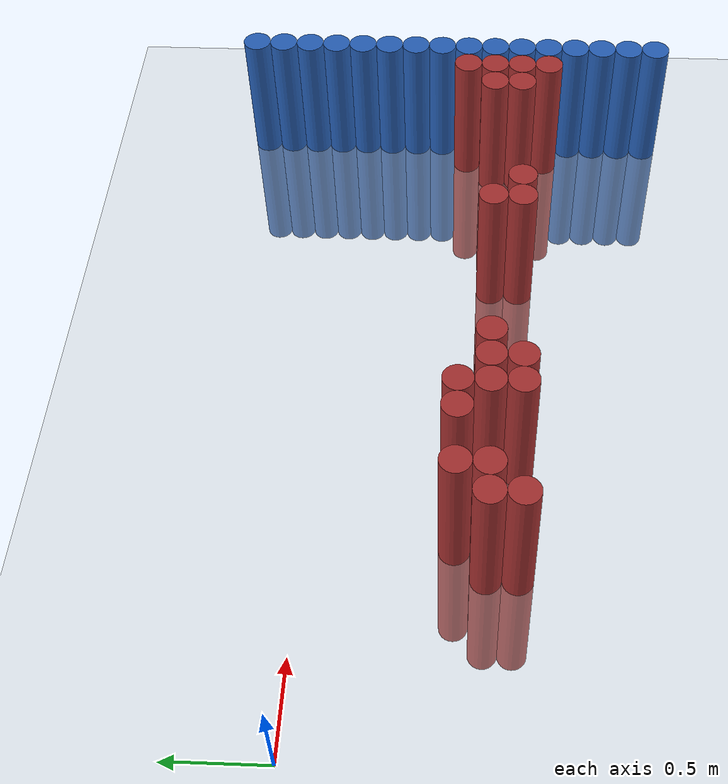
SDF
<sdf version="1.6">
 <world name="default">
  <model name="ground_plane">
   <static>1</static>
   <link name="link">
    <collision name="collision">
     <geometry><plane><normal>0 0 1</normal><size>100 100</size></plane></geometry>
     <surface><friction><ode><mu>100</mu><mu2>50</mu2></ode></friction></surface>
    </collision>
    <visual name="visual">
     <cast_shadows>0</cast_shadows>
     <geometry><plane><normal>0 0 1</normal><size>100 100</size></plane></geometry>
     <material>
      <script><uri>file://media/materials/scripts/gazebo.material</uri><name>Gazebo/Grey</name></script>
     </material>
    </visual>
   </link>
  </model>
  <model name="unit_cylinder_92">
   <static>1</static>
   <pose>3.925000 -1.625000 0.000000 0.000000 0.000000 0.000000</pose>
   <link name="link">
    <inertial>
     <mass>1</mass>
     <inertia><ixx>0.145833</ixx><ixy>0</ixy><ixz>0</ixz><iyy>0.145833</iyy><iyz>0</iyz><izz>0.125</izz></inertia>
    </inertial>
    <collision name="collision">
     <geometry><cylinder><radius>0.075000</radius><length>1.5</length></cylinder></geometry>
    </collision>
    <visual name="visual">
     <geometry><cylinder><radius>0.075000</radius><length>1.5</length></cylinder></geometry>
     <material>
      <ambient>0.152000 0.379000 0.720000 1</ambient>
      <diffuse>0.152000 0.379000 0.720000 1</diffuse>
     </material>
     <material>
      <script><name>Gazebo/Grey</name><uri>file://media/materials/scripts/gazebo.material</uri></script>
     </material>
    </visual>
   </link>
  </model>
  <model name="unit_cylinder_94">
   <static>1</static>
   <pose>3.925000 -1.475000 0.000000 0.000000 0.000000 0.000000</pose>
   <link name="link">
    <inertial>
     <mass>1</mass>
     <inertia><ixx>0.145833</ixx><ixy>0</ixy><ixz>0</ixz><iyy>0.145833</iyy><iyz>0</iyz><izz>0.125</izz></inertia>
    </inertial>
    <collision name="collision">
     <geometry><cylinder><radius>0.075000</radius><length>1.5</length></cylinder></geometry>
    </collision>
    <visual name="visual">
     <geometry><cylinder><radius>0.075000</radius><length>1.5</length></cylinder></geometry>
     <material>
      <ambient>0.152000 0.379000 0.720000 1</ambient>
      <diffuse>0.152000 0.379000 0.720000 1</diffuse>
     </material>
     <material>
      <script><name>Gazebo/Grey</name><uri>file://media/materials/scripts/gazebo.material</uri></script>
     </material>
    </visual>
   </link>
  </model>
  <model name="unit_cylinder_96">
   <static>1</static>
   <pose>3.925000 -1.325000 0.000000 0.000000 0.000000 0.000000</pose>
   <link name="link">
    <inertial>
     <mass>1</mass>
     <inertia><ixx>0.145833</ixx><ixy>0</ixy><ixz>0</ixz><iyy>0.145833</iyy><iyz>0</iyz><izz>0.125</izz></inertia>
    </inertial>
    <collision name="collision">
     <geometry><cylinder><radius>0.075000</radius><length>1.5</length></cylinder></geometry>
    </collision>
    <visual name="visual">
     <geometry><cylinder><radius>0.075000</radius><length>1.5</length></cylinder></geometry>
     <material>
      <ambient>0.152000 0.379000 0.720000 1</ambient>
      <diffuse>0.152000 0.379000 0.720000 1</diffuse>
     </material>
     <material>
      <script><name>Gazebo/Grey</name><uri>file://media/materials/scripts/gazebo.material</uri></script>
     </material>
    </visual>
   </link>
  </model>
  <model name="unit_cylinder_98">
   <static>1</static>
   <pose>3.925000 -1.175000 0.000000 0.000000 0.000000 0.000000</pose>
   <link name="link">
    <inertial>
     <mass>1</mass>
     <inertia><ixx>0.145833</ixx><ixy>0</ixy><ixz>0</ixz><iyy>0.145833</iyy><iyz>0</iyz><izz>0.125</izz></inertia>
    </inertial>
    <collision name="collision">
     <geometry><cylinder><radius>0.075000</radius><length>1.5</length></cylinder></geometry>
    </collision>
    <visual name="visual">
     <geometry><cylinder><radius>0.075000</radius><length>1.5</length></cylinder></geometry>
     <material>
      <ambient>0.152000 0.379000 0.720000 1</ambient>
      <diffuse>0.152000 0.379000 0.720000 1</diffuse>
     </material>
     <material>
      <script><name>Gazebo/Grey</name><uri>file://media/materials/scripts/gazebo.material</uri></script>
     </material>
    </visual>
   </link>
  </model>
  <model name="unit_cylinder_100">
   <static>1</static>
   <pose>3.925000 -1.025000 0.000000 0.000000 0.000000 0.000000</pose>
   <link name="link">
    <inertial>
     <mass>1</mass>
     <inertia><ixx>0.145833</ixx><ixy>0</ixy><ixz>0</ixz><iyy>0.145833</iyy><iyz>0</iyz><izz>0.125</izz></inertia>
    </inertial>
    <collision name="collision">
     <geometry><cylinder><radius>0.075000</radius><length>1.5</length></cylinder></geometry>
    </collision>
    <visual name="visual">
     <geometry><cylinder><radius>0.075000</radius><length>1.5</length></cylinder></geometry>
     <material>
      <ambient>0.152000 0.379000 0.720000 1</ambient>
      <diffuse>0.152000 0.379000 0.720000 1</diffuse>
     </material>
     <material>
      <script><name>Gazebo/Grey</name><uri>file://media/materials/scripts/gazebo.material</uri></script>
     </material>
    </visual>
   </link>
  </model>
  <model name="unit_cylinder_102">
   <static>1</static>
   <pose>3.925000 -0.875000 0.000000 0.000000 0.000000 0.000000</pose>
   <link name="link">
    <inertial>
     <mass>1</mass>
     <inertia><ixx>0.145833</ixx><ixy>0</ixy><ixz>0</ixz><iyy>0.145833</iyy><iyz>0</iyz><izz>0.125</izz></inertia>
    </inertial>
    <collision name="collision">
     <geometry><cylinder><radius>0.075000</radius><length>1.5</length></cylinder></geometry>
    </collision>
    <visual name="visual">
     <geometry><cylinder><radius>0.075000</radius><length>1.5</length></cylinder></geometry>
     <material>
      <ambient>0.152000 0.379000 0.720000 1</ambient>
      <diffuse>0.152000 0.379000 0.720000 1</diffuse>
     </material>
     <material>
      <script><name>Gazebo/Grey</name><uri>file://media/materials/scripts/gazebo.material</uri></script>
     </material>
    </visual>
   </link>
  </model>
  <model name="unit_cylinder_104">
   <static>1</static>
   <pose>3.925000 -0.725000 0.000000 0.000000 0.000000 0.000000</pose>
   <link name="link">
    <inertial>
     <mass>1</mass>
     <inertia><ixx>0.145833</ixx><ixy>0</ixy><ixz>0</ixz><iyy>0.145833</iyy><iyz>0</iyz><izz>0.125</izz></inertia>
    </inertial>
    <collision name="collision">
     <geometry><cylinder><radius>0.075000</radius><length>1.5</length></cylinder></geometry>
    </collision>
    <visual name="visual">
     <geometry><cylinder><radius>0.075000</radius><length>1.5</length></cylinder></geometry>
     <material>
      <ambient>0.152000 0.379000 0.720000 1</ambient>
      <diffuse>0.152000 0.379000 0.720000 1</diffuse>
     </material>
     <material>
      <script><name>Gazebo/Grey</name><uri>file://media/materials/scripts/gazebo.material</uri></script>
     </material>
    </visual>
   </link>
  </model>
  <model name="unit_cylinder_106">
   <static>1</static>
   <pose>3.925000 -0.575000 0.000000 0.000000 0.000000 0.000000</pose>
   <link name="link">
    <inertial>
     <mass>1</mass>
     <inertia><ixx>0.145833</ixx><ixy>0</ixy><ixz>0</ixz><iyy>0.145833</iyy><iyz>0</iyz><izz>0.125</izz></inertia>
    </inertial>
    <collision name="collision">
     <geometry><cylinder><radius>0.075000</radius><length>1.5</length></cylinder></geometry>
    </collision>
    <visual name="visual">
     <geometry><cylinder><radius>0.075000</radius><length>1.5</length></cylinder></geometry>
     <material>
      <ambient>0.152000 0.379000 0.720000 1</ambient>
      <diffuse>0.152000 0.379000 0.720000 1</diffuse>
     </material>
     <material>
      <script><name>Gazebo/Grey</name><uri>file://media/materials/scripts/gazebo.material</uri></script>
     </material>
    </visual>
   </link>
  </model>
  <model name="unit_cylinder_108">
   <static>1</static>
   <pose>3.925000 -0.425000 0.000000 0.000000 0.000000 0.000000</pose>
   <link name="link">
    <inertial>
     <mass>1</mass>
     <inertia><ixx>0.145833</ixx><ixy>0</ixy><ixz>0</ixz><iyy>0.145833</iyy><iyz>0</iyz><izz>0.125</izz></inertia>
    </inertial>
    <collision name="collision">
     <geometry><cylinder><radius>0.075000</radius><length>1.5</length></cylinder></geometry>
    </collision>
    <visual name="visual">
     <geometry><cylinder><radius>0.075000</radius><length>1.5</length></cylinder></geometry>
     <material>
      <ambient>0.152000 0.379000 0.720000 1</ambient>
      <diffuse>0.152000 0.379000 0.720000 1</diffuse>
     </material>
     <material>
      <script><name>Gazebo/Grey</name><uri>file://media/materials/scripts/gazebo.material</uri></script>
     </material>
    </visual>
   </link>
  </model>
  <model name="unit_cylinder_110">
   <static>1</static>
   <pose>3.925000 -0.275000 0.000000 0.000000 0.000000 0.000000</pose>
   <link name="link">
    <inertial>
     <mass>1</mass>
     <inertia><ixx>0.145833</ixx><ixy>0</ixy><ixz>0</ixz><iyy>0.145833</iyy><iyz>0</iyz><izz>0.125</izz></inertia>
    </inertial>
    <collision name="collision">
     <geometry><cylinder><radius>0.075000</radius><length>1.5</length></cylinder></geometry>
    </collision>
    <visual name="visual">
     <geometry><cylinder><radius>0.075000</radius><length>1.5</length></cylinder></geometry>
     <material>
      <ambient>0.152000 0.379000 0.720000 1</ambient>
      <diffuse>0.152000 0.379000 0.720000 1</diffuse>
     </material>
     <material>
      <script><name>Gazebo/Grey</name><uri>file://media/materials/scripts/gazebo.material</uri></script>
     </material>
    </visual>
   </link>
  </model>
  <model name="unit_cylinder_112">
   <static>1</static>
   <pose>3.925000 -0.125000 0.000000 0.000000 0.000000 0.000000</pose>
   <link name="link">
    <inertial>
     <mass>1</mass>
     <inertia><ixx>0.145833</ixx><ixy>0</ixy><ixz>0</ixz><iyy>0.145833</iyy><iyz>0</iyz><izz>0.125</izz></inertia>
    </inertial>
    <collision name="collision">
     <geometry><cylinder><radius>0.075000</radius><length>1.5</length></cylinder></geometry>
    </collision>
    <visual name="visual">
     <geometry><cylinder><radius>0.075000</radius><length>1.5</length></cylinder></geometry>
     <material>
      <ambient>0.152000 0.379000 0.720000 1</ambient>
      <diffuse>0.152000 0.379000 0.720000 1</diffuse>
     </material>
     <material>
      <script><name>Gazebo/Grey</name><uri>file://media/materials/scripts/gazebo.material</uri></script>
     </material>
    </visual>
   </link>
  </model>
  <model name="unit_cylinder_114">
   <static>1</static>
   <pose>3.925000 0.025000 0.000000 0.000000 0.000000 0.000000</pose>
   <link name="link">
    <inertial>
     <mass>1</mass>
     <inertia><ixx>0.145833</ixx><ixy>0</ixy><ixz>0</ixz><iyy>0.145833</iyy><iyz>0</iyz><izz>0.125</izz></inertia>
    </inertial>
    <collision name="collision">
     <geometry><cylinder><radius>0.075000</radius><length>1.5</length></cylinder></geometry>
    </collision>
    <visual name="visual">
     <geometry><cylinder><radius>0.075000</radius><length>1.5</length></cylinder></geometry>
     <material>
      <ambient>0.152000 0.379000 0.720000 1</ambient>
      <diffuse>0.152000 0.379000 0.720000 1</diffuse>
     </material>
     <material>
      <script><name>Gazebo/Grey</name><uri>file://media/materials/scripts/gazebo.material</uri></script>
     </material>
    </visual>
   </link>
  </model>
  <model name="unit_cylinder_116">
   <static>1</static>
   <pose>3.925000 0.175000 0.000000 0.000000 0.000000 0.000000</pose>
   <link name="link">
    <inertial>
     <mass>1</mass>
     <inertia><ixx>0.145833</ixx><ixy>0</ixy><ixz>0</ixz><iyy>0.145833</iyy><iyz>0</iyz><izz>0.125</izz></inertia>
    </inertial>
    <collision name="collision">
     <geometry><cylinder><radius>0.075000</radius><length>1.5</length></cylinder></geometry>
    </collision>
    <visual name="visual">
     <geometry><cylinder><radius>0.075000</radius><length>1.5</length></cylinder></geometry>
     <material>
      <ambient>0.152000 0.379000 0.720000 1</ambient>
      <diffuse>0.152000 0.379000 0.720000 1</diffuse>
     </material>
     <material>
      <script><name>Gazebo/Grey</name><uri>file://media/materials/scripts/gazebo.material</uri></script>
     </material>
    </visual>
   </link>
  </model>
  <model name="unit_cylinder_118">
   <static>1</static>
   <pose>3.925000 0.325000 0.000000 0.000000 0.000000 0.000000</pose>
   <link name="link">
    <inertial>
     <mass>1</mass>
     <inertia><ixx>0.145833</ixx><ixy>0</ixy><ixz>0</ixz><iyy>0.145833</iyy><iyz>0</iyz><izz>0.125</izz></inertia>
    </inertial>
    <collision name="collision">
     <geometry><cylinder><radius>0.075000</radius><length>1.5</length></cylinder></geometry>
    </collision>
    <visual name="visual">
     <geometry><cylinder><radius>0.075000</radius><length>1.5</length></cylinder></geometry>
     <material>
      <ambient>0.152000 0.379000 0.720000 1</ambient>
      <diffuse>0.152000 0.379000 0.720000 1</diffuse>
     </material>
     <material>
      <script><name>Gazebo/Grey</name><uri>file://media/materials/scripts/gazebo.material</uri></script>
     </material>
    </visual>
   </link>
  </model>
  <model name="unit_cylinder_120">
   <static>1</static>
   <pose>3.925000 0.475000 0.000000 0.000000 0.000000 0.000000</pose>
   <link name="link">
    <inertial>
     <mass>1</mass>
     <inertia><ixx>0.145833</ixx><ixy>0</ixy><ixz>0</ixz><iyy>0.145833</iyy><iyz>0</iyz><izz>0.125</izz></inertia>
    </inertial>
    <collision name="collision">
     <geometry><cylinder><radius>0.075000</radius><length>1.5</length></cylinder></geometry>
    </collision>
    <visual name="visual">
     <geometry><cylinder><radius>0.075000</radius><length>1.5</length></cylinder></geometry>
     <material>
      <ambient>0.152000 0.379000 0.720000 1</ambient>
      <diffuse>0.152000 0.379000 0.720000 1</diffuse>
     </material>
     <material>
      <script><name>Gazebo/Grey</name><uri>file://media/materials/scripts/gazebo.material</uri></script>
     </material>
    </visual>
   </link>
  </model>
  <model name="unit_cylinder_343">
   <static>1</static>
   <pose>0.925000 -1.025000 0.000000 0.000000 0.000000 0.000000</pose>
   <link name="link">
    <inertial>
     <mass>1</mass>
     <inertia><ixx>0.145833</ixx><ixy>0</ixy><ixz>0</ixz><iyy>0.145833</iyy><iyz>0</iyz><izz>0.125</izz></inertia>
    </inertial>
    <collision name="collision">
     <geometry><cylinder><radius>0.075000</radius><length>1.5</length></cylinder></geometry>
    </collision>
    <visual name="visual">
     <geometry><cylinder><radius>0.075000</radius><length>1.5</length></cylinder></geometry>
     <material>
      <ambient>0.648000 0.192000 0.192000 1</ambient>
      <diffuse>0.648000 0.192000 0.192000 1</diffuse>
     </material>
     <material>
      <script><name>Gazebo/Grey</name><uri>file://media/materials/scripts/gazebo.material</uri></script>
     </material>
    </visual>
   </link>
  </model>
  <model name="unit_cylinder_344">
   <static>1</static>
   <pose>0.925000 -0.875000 0.000000 0.000000 0.000000 0.000000</pose>
   <link name="link">
    <inertial>
     <mass>1</mass>
     <inertia><ixx>0.145833</ixx><ixy>0</ixy><ixz>0</ixz><iyy>0.145833</iyy><iyz>0</iyz><izz>0.125</izz></inertia>
    </inertial>
    <collision name="collision">
     <geometry><cylinder><radius>0.075000</radius><length>1.5</length></cylinder></geometry>
    </collision>
    <visual name="visual">
     <geometry><cylinder><radius>0.075000</radius><length>1.5</length></cylinder></geometry>
     <material>
      <ambient>0.648000 0.192000 0.192000 1</ambient>
      <diffuse>0.648000 0.192000 0.192000 1</diffuse>
     </material>
     <material>
      <script><name>Gazebo/Grey</name><uri>file://media/materials/scripts/gazebo.material</uri></script>
     </material>
    </visual>
   </link>
  </model>
  <model name="unit_cylinder_347">
   <static>1</static>
   <pose>1.075000 -0.875000 0.000000 0.000000 0.000000 0.000000</pose>
   <link name="link">
    <inertial>
     <mass>1</mass>
     <inertia><ixx>0.145833</ixx><ixy>0</ixy><ixz>0</ixz><iyy>0.145833</iyy><iyz>0</iyz><izz>0.125</izz></inertia>
    </inertial>
    <collision name="collision">
     <geometry><cylinder><radius>0.075000</radius><length>1.5</length></cylinder></geometry>
    </collision>
    <visual name="visual">
     <geometry><cylinder><radius>0.075000</radius><length>1.5</length></cylinder></geometry>
     <material>
      <ambient>0.648000 0.192000 0.192000 1</ambient>
      <diffuse>0.648000 0.192000 0.192000 1</diffuse>
     </material>
     <material>
      <script><name>Gazebo/Grey</name><uri>file://media/materials/scripts/gazebo.material</uri></script>
     </material>
    </visual>
   </link>
  </model>
  <model name="unit_cylinder_348">
   <static>1</static>
   <pose>1.075000 -0.725000 0.000000 0.000000 0.000000 0.000000</pose>
   <link name="link">
    <inertial>
     <mass>1</mass>
     <inertia><ixx>0.145833</ixx><ixy>0</ixy><ixz>0</ixz><iyy>0.145833</iyy><iyz>0</iyz><izz>0.125</izz></inertia>
    </inertial>
    <collision name="collision">
     <geometry><cylinder><radius>0.075000</radius><length>1.5</length></cylinder></geometry>
    </collision>
    <visual name="visual">
     <geometry><cylinder><radius>0.075000</radius><length>1.5</length></cylinder></geometry>
     <material>
      <ambient>0.648000 0.192000 0.192000 1</ambient>
      <diffuse>0.648000 0.192000 0.192000 1</diffuse>
     </material>
     <material>
      <script><name>Gazebo/Grey</name><uri>file://media/materials/scripts/gazebo.material</uri></script>
     </material>
    </visual>
   </link>
  </model>
  <model name="unit_cylinder_353">
   <static>1</static>
   <pose>1.375000 -0.725000 0.000000 0.000000 0.000000 0.000000</pose>
   <link name="link">
    <inertial>
     <mass>1</mass>
     <inertia><ixx>0.145833</ixx><ixy>0</ixy><ixz>0</ixz><iyy>0.145833</iyy><iyz>0</iyz><izz>0.125</izz></inertia>
    </inertial>
    <collision name="collision">
     <geometry><cylinder><radius>0.075000</radius><length>1.5</length></cylinder></geometry>
    </collision>
    <visual name="visual">
     <geometry><cylinder><radius>0.075000</radius><length>1.5</length></cylinder></geometry>
     <material>
      <ambient>0.648000 0.192000 0.192000 1</ambient>
      <diffuse>0.648000 0.192000 0.192000 1</diffuse>
     </material>
     <material>
      <script><name>Gazebo/Grey</name><uri>file://media/materials/scripts/gazebo.material</uri></script>
     </material>
    </visual>
   </link>
  </model>
  <model name="unit_cylinder_354">
   <static>1</static>
   <pose>1.525000 -1.025000 0.000000 0.000000 0.000000 0.000000</pose>
   <link name="link">
    <inertial>
     <mass>1</mass>
     <inertia><ixx>0.145833</ixx><ixy>0</ixy><ixz>0</ixz><iyy>0.145833</iyy><iyz>0</iyz><izz>0.125</izz></inertia>
    </inertial>
    <collision name="collision">
     <geometry><cylinder><radius>0.075000</radius><length>1.5</length></cylinder></geometry>
    </collision>
    <visual name="visual">
     <geometry><cylinder><radius>0.075000</radius><length>1.5</length></cylinder></geometry>
     <material>
      <ambient>0.648000 0.192000 0.192000 1</ambient>
      <diffuse>0.648000 0.192000 0.192000 1</diffuse>
     </material>
     <material>
      <script><name>Gazebo/Grey</name><uri>file://media/materials/scripts/gazebo.material</uri></script>
     </material>
    </visual>
   </link>
  </model>
  <model name="unit_cylinder_355">
   <static>1</static>
   <pose>1.525000 -0.875000 0.000000 0.000000 0.000000 0.000000</pose>
   <link name="link">
    <inertial>
     <mass>1</mass>
     <inertia><ixx>0.145833</ixx><ixy>0</ixy><ixz>0</ixz><iyy>0.145833</iyy><iyz>0</iyz><izz>0.125</izz></inertia>
    </inertial>
    <collision name="collision">
     <geometry><cylinder><radius>0.075000</radius><length>1.5</length></cylinder></geometry>
    </collision>
    <visual name="visual">
     <geometry><cylinder><radius>0.075000</radius><length>1.5</length></cylinder></geometry>
     <material>
      <ambient>0.648000 0.192000 0.192000 1</ambient>
      <diffuse>0.648000 0.192000 0.192000 1</diffuse>
     </material>
     <material>
      <script><name>Gazebo/Grey</name><uri>file://media/materials/scripts/gazebo.material</uri></script>
     </material>
    </visual>
   </link>
  </model>
  <model name="unit_cylinder_356">
   <static>1</static>
   <pose>1.525000 -0.725000 0.000000 0.000000 0.000000 0.000000</pose>
   <link name="link">
    <inertial>
     <mass>1</mass>
     <inertia><ixx>0.145833</ixx><ixy>0</ixy><ixz>0</ixz><iyy>0.145833</iyy><iyz>0</iyz><izz>0.125</izz></inertia>
    </inertial>
    <collision name="collision">
     <geometry><cylinder><radius>0.075000</radius><length>1.5</length></cylinder></geometry>
    </collision>
    <visual name="visual">
     <geometry><cylinder><radius>0.075000</radius><length>1.5</length></cylinder></geometry>
     <material>
      <ambient>0.648000 0.192000 0.192000 1</ambient>
      <diffuse>0.648000 0.192000 0.192000 1</diffuse>
     </material>
     <material>
      <script><name>Gazebo/Grey</name><uri>file://media/materials/scripts/gazebo.material</uri></script>
     </material>
    </visual>
   </link>
  </model>
  <model name="unit_cylinder_357">
   <static>1</static>
   <pose>1.675000 -1.025000 0.000000 0.000000 0.000000 0.000000</pose>
   <link name="link">
    <inertial>
     <mass>1</mass>
     <inertia><ixx>0.145833</ixx><ixy>0</ixy><ixz>0</ixz><iyy>0.145833</iyy><iyz>0</iyz><izz>0.125</izz></inertia>
    </inertial>
    <collision name="collision">
     <geometry><cylinder><radius>0.075000</radius><length>1.5</length></cylinder></geometry>
    </collision>
    <visual name="visual">
     <geometry><cylinder><radius>0.075000</radius><length>1.5</length></cylinder></geometry>
     <material>
      <ambient>0.648000 0.192000 0.192000 1</ambient>
      <diffuse>0.648000 0.192000 0.192000 1</diffuse>
     </material>
     <material>
      <script><name>Gazebo/Grey</name><uri>file://media/materials/scripts/gazebo.material</uri></script>
     </material>
    </visual>
   </link>
  </model>
  <model name="unit_cylinder_358">
   <static>1</static>
   <pose>1.675000 -0.875000 0.000000 0.000000 0.000000 0.000000</pose>
   <link name="link">
    <inertial>
     <mass>1</mass>
     <inertia><ixx>0.145833</ixx><ixy>0</ixy><ixz>0</ixz><iyy>0.145833</iyy><iyz>0</iyz><izz>0.125</izz></inertia>
    </inertial>
    <collision name="collision">
     <geometry><cylinder><radius>0.075000</radius><length>1.5</length></cylinder></geometry>
    </collision>
    <visual name="visual">
     <geometry><cylinder><radius>0.075000</radius><length>1.5</length></cylinder></geometry>
     <material>
      <ambient>0.648000 0.192000 0.192000 1</ambient>
      <diffuse>0.648000 0.192000 0.192000 1</diffuse>
     </material>
     <material>
      <script><name>Gazebo/Grey</name><uri>file://media/materials/scripts/gazebo.material</uri></script>
     </material>
    </visual>
   </link>
  </model>
  <model name="unit_cylinder_360">
   <static>1</static>
   <pose>1.825000 -0.875000 0.000000 0.000000 0.000000 0.000000</pose>
   <link name="link">
    <inertial>
     <mass>1</mass>
     <inertia><ixx>0.145833</ixx><ixy>0</ixy><ixz>0</ixz><iyy>0.145833</iyy><iyz>0</iyz><izz>0.125</izz></inertia>
    </inertial>
    <collision name="collision">
     <geometry><cylinder><radius>0.075000</radius><length>1.5</length></cylinder></geometry>
    </collision>
    <visual name="visual">
     <geometry><cylinder><radius>0.075000</radius><length>1.5</length></cylinder></geometry>
     <material>
      <ambient>0.648000 0.192000 0.192000 1</ambient>
      <diffuse>0.648000 0.192000 0.192000 1</diffuse>
     </material>
     <material>
      <script><name>Gazebo/Grey</name><uri>file://media/materials/scripts/gazebo.material</uri></script>
     </material>
    </visual>
   </link>
  </model>
  <model name="unit_cylinder_372">
   <static>1</static>
   <pose>2.725000 -1.025000 0.000000 0.000000 0.000000 0.000000</pose>
   <link name="link">
    <inertial>
     <mass>1</mass>
     <inertia><ixx>0.145833</ixx><ixy>0</ixy><ixz>0</ixz><iyy>0.145833</iyy><iyz>0</iyz><izz>0.125</izz></inertia>
    </inertial>
    <collision name="collision">
     <geometry><cylinder><radius>0.075000</radius><length>1.5</length></cylinder></geometry>
    </collision>
    <visual name="visual">
     <geometry><cylinder><radius>0.075000</radius><length>1.5</length></cylinder></geometry>
     <material>
      <ambient>0.648000 0.192000 0.192000 1</ambient>
      <diffuse>0.648000 0.192000 0.192000 1</diffuse>
     </material>
     <material>
      <script><name>Gazebo/Grey</name><uri>file://media/materials/scripts/gazebo.material</uri></script>
     </material>
    </visual>
   </link>
  </model>
  <model name="unit_cylinder_373">
   <static>1</static>
   <pose>2.725000 -0.875000 0.000000 0.000000 0.000000 0.000000</pose>
   <link name="link">
    <inertial>
     <mass>1</mass>
     <inertia><ixx>0.145833</ixx><ixy>0</ixy><ixz>0</ixz><iyy>0.145833</iyy><iyz>0</iyz><izz>0.125</izz></inertia>
    </inertial>
    <collision name="collision">
     <geometry><cylinder><radius>0.075000</radius><length>1.5</length></cylinder></geometry>
    </collision>
    <visual name="visual">
     <geometry><cylinder><radius>0.075000</radius><length>1.5</length></cylinder></geometry>
     <material>
      <ambient>0.648000 0.192000 0.192000 1</ambient>
      <diffuse>0.648000 0.192000 0.192000 1</diffuse>
     </material>
     <material>
      <script><name>Gazebo/Grey</name><uri>file://media/materials/scripts/gazebo.material</uri></script>
     </material>
    </visual>
   </link>
  </model>
  <model name="unit_cylinder_375">
   <static>1</static>
   <pose>2.875000 -1.025000 0.000000 0.000000 0.000000 0.000000</pose>
   <link name="link">
    <inertial>
     <mass>1</mass>
     <inertia><ixx>0.145833</ixx><ixy>0</ixy><ixz>0</ixz><iyy>0.145833</iyy><iyz>0</iyz><izz>0.125</izz></inertia>
    </inertial>
    <collision name="collision">
     <geometry><cylinder><radius>0.075000</radius><length>1.5</length></cylinder></geometry>
    </collision>
    <visual name="visual">
     <geometry><cylinder><radius>0.075000</radius><length>1.5</length></cylinder></geometry>
     <material>
      <ambient>0.648000 0.192000 0.192000 1</ambient>
      <diffuse>0.648000 0.192000 0.192000 1</diffuse>
     </material>
     <material>
      <script><name>Gazebo/Grey</name><uri>file://media/materials/scripts/gazebo.material</uri></script>
     </material>
    </visual>
   </link>
  </model>
  <model name="unit_cylinder_382">
   <static>1</static>
   <pose>3.625000 -1.025000 0.000000 0.000000 0.000000 0.000000</pose>
   <link name="link">
    <inertial>
     <mass>1</mass>
     <inertia><ixx>0.145833</ixx><ixy>0</ixy><ixz>0</ixz><iyy>0.145833</iyy><iyz>0</iyz><izz>0.125</izz></inertia>
    </inertial>
    <collision name="collision">
     <geometry><cylinder><radius>0.075000</radius><length>1.5</length></cylinder></geometry>
    </collision>
    <visual name="visual">
     <geometry><cylinder><radius>0.075000</radius><length>1.5</length></cylinder></geometry>
     <material>
      <ambient>0.648000 0.192000 0.192000 1</ambient>
      <diffuse>0.648000 0.192000 0.192000 1</diffuse>
     </material>
     <material>
      <script><name>Gazebo/Grey</name><uri>file://media/materials/scripts/gazebo.material</uri></script>
     </material>
    </visual>
   </link>
  </model>
  <model name="unit_cylinder_383">
   <static>1</static>
   <pose>3.625000 -0.875000 0.000000 0.000000 0.000000 0.000000</pose>
   <link name="link">
    <inertial>
     <mass>1</mass>
     <inertia><ixx>0.145833</ixx><ixy>0</ixy><ixz>0</ixz><iyy>0.145833</iyy><iyz>0</iyz><izz>0.125</izz></inertia>
    </inertial>
    <collision name="collision">
     <geometry><cylinder><radius>0.075000</radius><length>1.5</length></cylinder></geometry>
    </collision>
    <visual name="visual">
     <geometry><cylinder><radius>0.075000</radius><length>1.5</length></cylinder></geometry>
     <material>
      <ambient>0.648000 0.192000 0.192000 1</ambient>
      <diffuse>0.648000 0.192000 0.192000 1</diffuse>
     </material>
     <material>
      <script><name>Gazebo/Grey</name><uri>file://media/materials/scripts/gazebo.material</uri></script>
     </material>
    </visual>
   </link>
  </model>
  <model name="unit_cylinder_387">
   <static>1</static>
   <pose>3.775000 -1.175000 0.000000 0.000000 0.000000 0.000000</pose>
   <link name="link">
    <inertial>
     <mass>1</mass>
     <inertia><ixx>0.145833</ixx><ixy>0</ixy><ixz>0</ixz><iyy>0.145833</iyy><iyz>0</iyz><izz>0.125</izz></inertia>
    </inertial>
    <collision name="collision">
     <geometry><cylinder><radius>0.075000</radius><length>1.5</length></cylinder></geometry>
    </collision>
    <visual name="visual">
     <geometry><cylinder><radius>0.075000</radius><length>1.5</length></cylinder></geometry>
     <material>
      <ambient>0.648000 0.192000 0.192000 1</ambient>
      <diffuse>0.648000 0.192000 0.192000 1</diffuse>
     </material>
     <material>
      <script><name>Gazebo/Grey</name><uri>file://media/materials/scripts/gazebo.material</uri></script>
     </material>
    </visual>
   </link>
  </model>
  <model name="unit_cylinder_388">
   <static>1</static>
   <pose>3.775000 -1.025000 0.000000 0.000000 0.000000 0.000000</pose>
   <link name="link">
    <inertial>
     <mass>1</mass>
     <inertia><ixx>0.145833</ixx><ixy>0</ixy><ixz>0</ixz><iyy>0.145833</iyy><iyz>0</iyz><izz>0.125</izz></inertia>
    </inertial>
    <collision name="collision">
     <geometry><cylinder><radius>0.075000</radius><length>1.5</length></cylinder></geometry>
    </collision>
    <visual name="visual">
     <geometry><cylinder><radius>0.075000</radius><length>1.5</length></cylinder></geometry>
     <material>
      <ambient>0.648000 0.192000 0.192000 1</ambient>
      <diffuse>0.648000 0.192000 0.192000 1</diffuse>
     </material>
     <material>
      <script><name>Gazebo/Grey</name><uri>file://media/materials/scripts/gazebo.material</uri></script>
     </material>
    </visual>
   </link>
  </model>
  <model name="unit_cylinder_389">
   <static>1</static>
   <pose>3.775000 -0.875000 0.000000 0.000000 0.000000 0.000000</pose>
   <link name="link">
    <inertial>
     <mass>1</mass>
     <inertia><ixx>0.145833</ixx><ixy>0</ixy><ixz>0</ixz><iyy>0.145833</iyy><iyz>0</iyz><izz>0.125</izz></inertia>
    </inertial>
    <collision name="collision">
     <geometry><cylinder><radius>0.075000</radius><length>1.5</length></cylinder></geometry>
    </collision>
    <visual name="visual">
     <geometry><cylinder><radius>0.075000</radius><length>1.5</length></cylinder></geometry>
     <material>
      <ambient>0.648000 0.192000 0.192000 1</ambient>
      <diffuse>0.648000 0.192000 0.192000 1</diffuse>
     </material>
     <material>
      <script><name>Gazebo/Grey</name><uri>file://media/materials/scripts/gazebo.material</uri></script>
     </material>
    </visual>
   </link>
  </model>
  <model name="unit_cylinder_390">
   <static>1</static>
   <pose>3.775000 -0.725000 0.000000 0.000000 0.000000 0.000000</pose>
   <link name="link">
    <inertial>
     <mass>1</mass>
     <inertia><ixx>0.145833</ixx><ixy>0</ixy><ixz>0</ixz><iyy>0.145833</iyy><iyz>0</iyz><izz>0.125</izz></inertia>
    </inertial>
    <collision name="collision">
     <geometry><cylinder><radius>0.075000</radius><length>1.5</length></cylinder></geometry>
    </collision>
    <visual name="visual">
     <geometry><cylinder><radius>0.075000</radius><length>1.5</length></cylinder></geometry>
     <material>
      <ambient>0.648000 0.192000 0.192000 1</ambient>
      <diffuse>0.648000 0.192000 0.192000 1</diffuse>
     </material>
     <material>
      <script><name>Gazebo/Grey</name><uri>file://media/materials/scripts/gazebo.material</uri></script>
     </material>
    </visual>
   </link>
  </model>
  <model name="unit_cylinder_401">
   <static>1</static>
   <pose>3.925000 -1.775000 0.000000 0.000000 0.000000 0.000000</pose>
   <link name="link">
    <inertial>
     <mass>1</mass>
     <inertia><ixx>0.145833</ixx><ixy>0</ixy><ixz>0</ixz><iyy>0.145833</iyy><iyz>0</iyz><izz>0.125</izz></inertia>
    </inertial>
    <collision name="collision">
     <geometry><cylinder><radius>0.075000</radius><length>1.5</length></cylinder></geometry>
    </collision>
    <visual name="visual">
     <geometry><cylinder><radius>0.075000</radius><length>1.5</length></cylinder></geometry>
     <material>
      <ambient>0.152000 0.379000 0.720000 1</ambient>
      <diffuse>0.152000 0.379000 0.720000 1</diffuse>
     </material>
     <material>
      <script><name>Gazebo/Grey</name><uri>file://media/materials/scripts/gazebo.material</uri></script>
     </material>
    </visual>
   </link>
  </model>
  <model name="unit_cylinder_402">
   <static>1</static>
   <pose>3.925000 -1.625000 0.000000 0.000000 0.000000 0.000000</pose>
   <link name="link">
    <inertial>
     <mass>1</mass>
     <inertia><ixx>0.145833</ixx><ixy>0</ixy><ixz>0</ixz><iyy>0.145833</iyy><iyz>0</iyz><izz>0.125</izz></inertia>
    </inertial>
    <collision name="collision">
     <geometry><cylinder><radius>0.075000</radius><length>1.5</length></cylinder></geometry>
    </collision>
    <visual name="visual">
     <geometry><cylinder><radius>0.075000</radius><length>1.5</length></cylinder></geometry>
     <material>
      <ambient>0.152000 0.379000 0.720000 1</ambient>
      <diffuse>0.152000 0.379000 0.720000 1</diffuse>
     </material>
     <material>
      <script><name>Gazebo/Grey</name><uri>file://media/materials/scripts/gazebo.material</uri></script>
     </material>
    </visual>
   </link>
  </model>
  <model name="unit_cylinder_403">
   <static>1</static>
   <pose>3.925000 -1.475000 0.000000 0.000000 0.000000 0.000000</pose>
   <link name="link">
    <inertial>
     <mass>1</mass>
     <inertia><ixx>0.145833</ixx><ixy>0</ixy><ixz>0</ixz><iyy>0.145833</iyy><iyz>0</iyz><izz>0.125</izz></inertia>
    </inertial>
    <collision name="collision">
     <geometry><cylinder><radius>0.075000</radius><length>1.5</length></cylinder></geometry>
    </collision>
    <visual name="visual">
     <geometry><cylinder><radius>0.075000</radius><length>1.5</length></cylinder></geometry>
     <material>
      <ambient>0.152000 0.379000 0.720000 1</ambient>
      <diffuse>0.152000 0.379000 0.720000 1</diffuse>
     </material>
     <material>
      <script><name>Gazebo/Grey</name><uri>file://media/materials/scripts/gazebo.material</uri></script>
     </material>
    </visual>
   </link>
  </model>
  <model name="unit_cylinder_404">
   <static>1</static>
   <pose>3.925000 -1.325000 0.000000 0.000000 0.000000 0.000000</pose>
   <link name="link">
    <inertial>
     <mass>1</mass>
     <inertia><ixx>0.145833</ixx><ixy>0</ixy><ixz>0</ixz><iyy>0.145833</iyy><iyz>0</iyz><izz>0.125</izz></inertia>
    </inertial>
    <collision name="collision">
     <geometry><cylinder><radius>0.075000</radius><length>1.5</length></cylinder></geometry>
    </collision>
    <visual name="visual">
     <geometry><cylinder><radius>0.075000</radius><length>1.5</length></cylinder></geometry>
     <material>
      <ambient>0.152000 0.379000 0.720000 1</ambient>
      <diffuse>0.152000 0.379000 0.720000 1</diffuse>
     </material>
     <material>
      <script><name>Gazebo/Grey</name><uri>file://media/materials/scripts/gazebo.material</uri></script>
     </material>
    </visual>
   </link>
  </model>
  <model name="unit_cylinder_405">
   <static>1</static>
   <pose>3.925000 -1.175000 0.000000 0.000000 0.000000 0.000000</pose>
   <link name="link">
    <inertial>
     <mass>1</mass>
     <inertia><ixx>0.145833</ixx><ixy>0</ixy><ixz>0</ixz><iyy>0.145833</iyy><iyz>0</iyz><izz>0.125</izz></inertia>
    </inertial>
    <collision name="collision">
     <geometry><cylinder><radius>0.075000</radius><length>1.5</length></cylinder></geometry>
    </collision>
    <visual name="visual">
     <geometry><cylinder><radius>0.075000</radius><length>1.5</length></cylinder></geometry>
     <material>
      <ambient>0.152000 0.379000 0.720000 1</ambient>
      <diffuse>0.152000 0.379000 0.720000 1</diffuse>
     </material>
     <material>
      <script><name>Gazebo/Grey</name><uri>file://media/materials/scripts/gazebo.material</uri></script>
     </material>
    </visual>
   </link>
  </model>
  <model name="unit_cylinder_406">
   <static>1</static>
   <pose>3.925000 -1.025000 0.000000 0.000000 0.000000 0.000000</pose>
   <link name="link">
    <inertial>
     <mass>1</mass>
     <inertia><ixx>0.145833</ixx><ixy>0</ixy><ixz>0</ixz><iyy>0.145833</iyy><iyz>0</iyz><izz>0.125</izz></inertia>
    </inertial>
    <collision name="collision">
     <geometry><cylinder><radius>0.075000</radius><length>1.5</length></cylinder></geometry>
    </collision>
    <visual name="visual">
     <geometry><cylinder><radius>0.075000</radius><length>1.5</length></cylinder></geometry>
     <material>
      <ambient>0.152000 0.379000 0.720000 1</ambient>
      <diffuse>0.152000 0.379000 0.720000 1</diffuse>
     </material>
     <material>
      <script><name>Gazebo/Grey</name><uri>file://media/materials/scripts/gazebo.material</uri></script>
     </material>
    </visual>
   </link>
  </model>
  <model name="unit_cylinder_407">
   <static>1</static>
   <pose>3.925000 -0.875000 0.000000 0.000000 0.000000 0.000000</pose>
   <link name="link">
    <inertial>
     <mass>1</mass>
     <inertia><ixx>0.145833</ixx><ixy>0</ixy><ixz>0</ixz><iyy>0.145833</iyy><iyz>0</iyz><izz>0.125</izz></inertia>
    </inertial>
    <collision name="collision">
     <geometry><cylinder><radius>0.075000</radius><length>1.5</length></cylinder></geometry>
    </collision>
    <visual name="visual">
     <geometry><cylinder><radius>0.075000</radius><length>1.5</length></cylinder></geometry>
     <material>
      <ambient>0.152000 0.379000 0.720000 1</ambient>
      <diffuse>0.152000 0.379000 0.720000 1</diffuse>
     </material>
     <material>
      <script><name>Gazebo/Grey</name><uri>file://media/materials/scripts/gazebo.material</uri></script>
     </material>
    </visual>
   </link>
  </model>
  <model name="unit_cylinder_408">
   <static>1</static>
   <pose>3.925000 -0.725000 0.000000 0.000000 0.000000 0.000000</pose>
   <link name="link">
    <inertial>
     <mass>1</mass>
     <inertia><ixx>0.145833</ixx><ixy>0</ixy><ixz>0</ixz><iyy>0.145833</iyy><iyz>0</iyz><izz>0.125</izz></inertia>
    </inertial>
    <collision name="collision">
     <geometry><cylinder><radius>0.075000</radius><length>1.5</length></cylinder></geometry>
    </collision>
    <visual name="visual">
     <geometry><cylinder><radius>0.075000</radius><length>1.5</length></cylinder></geometry>
     <material>
      <ambient>0.152000 0.379000 0.720000 1</ambient>
      <diffuse>0.152000 0.379000 0.720000 1</diffuse>
     </material>
     <material>
      <script><name>Gazebo/Grey</name><uri>file://media/materials/scripts/gazebo.material</uri></script>
     </material>
    </visual>
   </link>
  </model>
  <model name="unit_cylinder_409">
   <static>1</static>
   <pose>3.925000 -0.575000 0.000000 0.000000 0.000000 0.000000</pose>
   <link name="link">
    <inertial>
     <mass>1</mass>
     <inertia><ixx>0.145833</ixx><ixy>0</ixy><ixz>0</ixz><iyy>0.145833</iyy><iyz>0</iyz><izz>0.125</izz></inertia>
    </inertial>
    <collision name="collision">
     <geometry><cylinder><radius>0.075000</radius><length>1.5</length></cylinder></geometry>
    </collision>
    <visual name="visual">
     <geometry><cylinder><radius>0.075000</radius><length>1.5</length></cylinder></geometry>
     <material>
      <ambient>0.152000 0.379000 0.720000 1</ambient>
      <diffuse>0.152000 0.379000 0.720000 1</diffuse>
     </material>
     <material>
      <script><name>Gazebo/Grey</name><uri>file://media/materials/scripts/gazebo.material</uri></script>
     </material>
    </visual>
   </link>
  </model>
  <model name="unit_cylinder_410">
   <static>1</static>
   <pose>3.925000 -0.425000 0.000000 0.000000 0.000000 0.000000</pose>
   <link name="link">
    <inertial>
     <mass>1</mass>
     <inertia><ixx>0.145833</ixx><ixy>0</ixy><ixz>0</ixz><iyy>0.145833</iyy><iyz>0</iyz><izz>0.125</izz></inertia>
    </inertial>
    <collision name="collision">
     <geometry><cylinder><radius>0.075000</radius><length>1.5</length></cylinder></geometry>
    </collision>
    <visual name="visual">
     <geometry><cylinder><radius>0.075000</radius><length>1.5</length></cylinder></geometry>
     <material>
      <ambient>0.152000 0.379000 0.720000 1</ambient>
      <diffuse>0.152000 0.379000 0.720000 1</diffuse>
     </material>
     <material>
      <script><name>Gazebo/Grey</name><uri>file://media/materials/scripts/gazebo.material</uri></script>
     </material>
    </visual>
   </link>
  </model>
  <model name="unit_cylinder_411">
   <static>1</static>
   <pose>3.925000 -0.275000 0.000000 0.000000 0.000000 0.000000</pose>
   <link name="link">
    <inertial>
     <mass>1</mass>
     <inertia><ixx>0.145833</ixx><ixy>0</ixy><ixz>0</ixz><iyy>0.145833</iyy><iyz>0</iyz><izz>0.125</izz></inertia>
    </inertial>
    <collision name="collision">
     <geometry><cylinder><radius>0.075000</radius><length>1.5</length></cylinder></geometry>
    </collision>
    <visual name="visual">
     <geometry><cylinder><radius>0.075000</radius><length>1.5</length></cylinder></geometry>
     <material>
      <ambient>0.152000 0.379000 0.720000 1</ambient>
      <diffuse>0.152000 0.379000 0.720000 1</diffuse>
     </material>
     <material>
      <script><name>Gazebo/Grey</name><uri>file://media/materials/scripts/gazebo.material</uri></script>
     </material>
    </visual>
   </link>
  </model>
  <model name="unit_cylinder_412">
   <static>1</static>
   <pose>3.925000 -0.125000 0.000000 0.000000 0.000000 0.000000</pose>
   <link name="link">
    <inertial>
     <mass>1</mass>
     <inertia><ixx>0.145833</ixx><ixy>0</ixy><ixz>0</ixz><iyy>0.145833</iyy><iyz>0</iyz><izz>0.125</izz></inertia>
    </inertial>
    <collision name="collision">
     <geometry><cylinder><radius>0.075000</radius><length>1.5</length></cylinder></geometry>
    </collision>
    <visual name="visual">
     <geometry><cylinder><radius>0.075000</radius><length>1.5</length></cylinder></geometry>
     <material>
      <ambient>0.152000 0.379000 0.720000 1</ambient>
      <diffuse>0.152000 0.379000 0.720000 1</diffuse>
     </material>
     <material>
      <script><name>Gazebo/Grey</name><uri>file://media/materials/scripts/gazebo.material</uri></script>
     </material>
    </visual>
   </link>
  </model>
  <model name="unit_cylinder_413">
   <static>1</static>
   <pose>3.925000 0.025000 0.000000 0.000000 0.000000 0.000000</pose>
   <link name="link">
    <inertial>
     <mass>1</mass>
     <inertia><ixx>0.145833</ixx><ixy>0</ixy><ixz>0</ixz><iyy>0.145833</iyy><iyz>0</iyz><izz>0.125</izz></inertia>
    </inertial>
    <collision name="collision">
     <geometry><cylinder><radius>0.075000</radius><length>1.5</length></cylinder></geometry>
    </collision>
    <visual name="visual">
     <geometry><cylinder><radius>0.075000</radius><length>1.5</length></cylinder></geometry>
     <material>
      <ambient>0.152000 0.379000 0.720000 1</ambient>
      <diffuse>0.152000 0.379000 0.720000 1</diffuse>
     </material>
     <material>
      <script><name>Gazebo/Grey</name><uri>file://media/materials/scripts/gazebo.material</uri></script>
     </material>
    </visual>
   </link>
  </model>
  <model name="unit_cylinder_414">
   <static>1</static>
   <pose>3.925000 0.175000 0.000000 0.000000 0.000000 0.000000</pose>
   <link name="link">
    <inertial>
     <mass>1</mass>
     <inertia><ixx>0.145833</ixx><ixy>0</ixy><ixz>0</ixz><iyy>0.145833</iyy><iyz>0</iyz><izz>0.125</izz></inertia>
    </inertial>
    <collision name="collision">
     <geometry><cylinder><radius>0.075000</radius><length>1.5</length></cylinder></geometry>
    </collision>
    <visual name="visual">
     <geometry><cylinder><radius>0.075000</radius><length>1.5</length></cylinder></geometry>
     <material>
      <ambient>0.152000 0.379000 0.720000 1</ambient>
      <diffuse>0.152000 0.379000 0.720000 1</diffuse>
     </material>
     <material>
      <script><name>Gazebo/Grey</name><uri>file://media/materials/scripts/gazebo.material</uri></script>
     </material>
    </visual>
   </link>
  </model>
  <model name="unit_cylinder_415">
   <static>1</static>
   <pose>3.925000 0.325000 0.000000 0.000000 0.000000 0.000000</pose>
   <link name="link">
    <inertial>
     <mass>1</mass>
     <inertia><ixx>0.145833</ixx><ixy>0</ixy><ixz>0</ixz><iyy>0.145833</iyy><iyz>0</iyz><izz>0.125</izz></inertia>
    </inertial>
    <collision name="collision">
     <geometry><cylinder><radius>0.075000</radius><length>1.5</length></cylinder></geometry>
    </collision>
    <visual name="visual">
     <geometry><cylinder><radius>0.075000</radius><length>1.5</length></cylinder></geometry>
     <material>
      <ambient>0.152000 0.379000 0.720000 1</ambient>
      <diffuse>0.152000 0.379000 0.720000 1</diffuse>
     </material>
     <material>
      <script><name>Gazebo/Grey</name><uri>file://media/materials/scripts/gazebo.material</uri></script>
     </material>
    </visual>
   </link>
  </model>
 </world>
</sdf>
